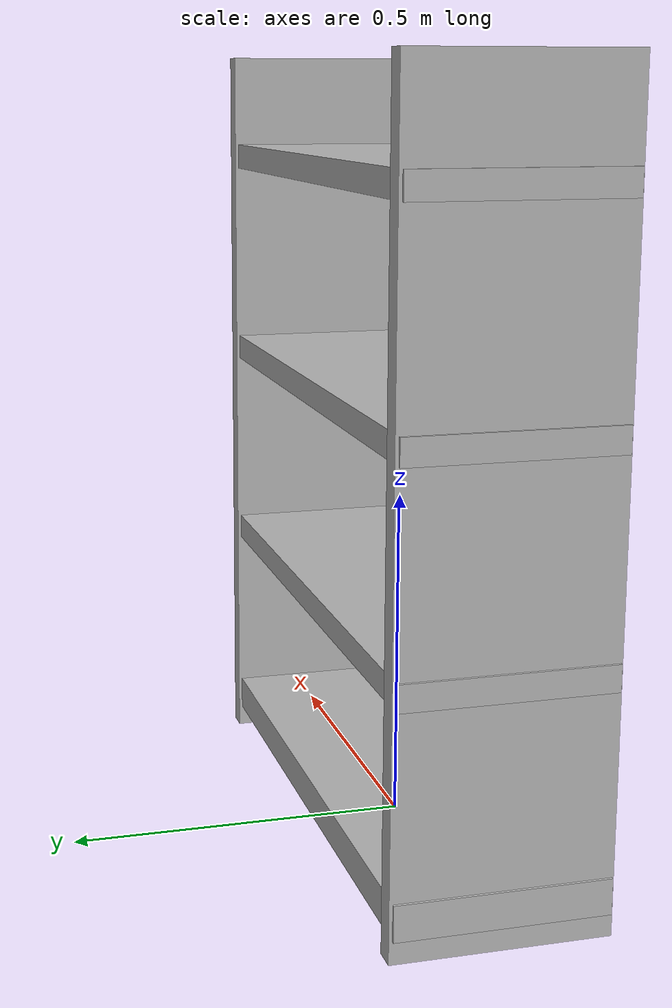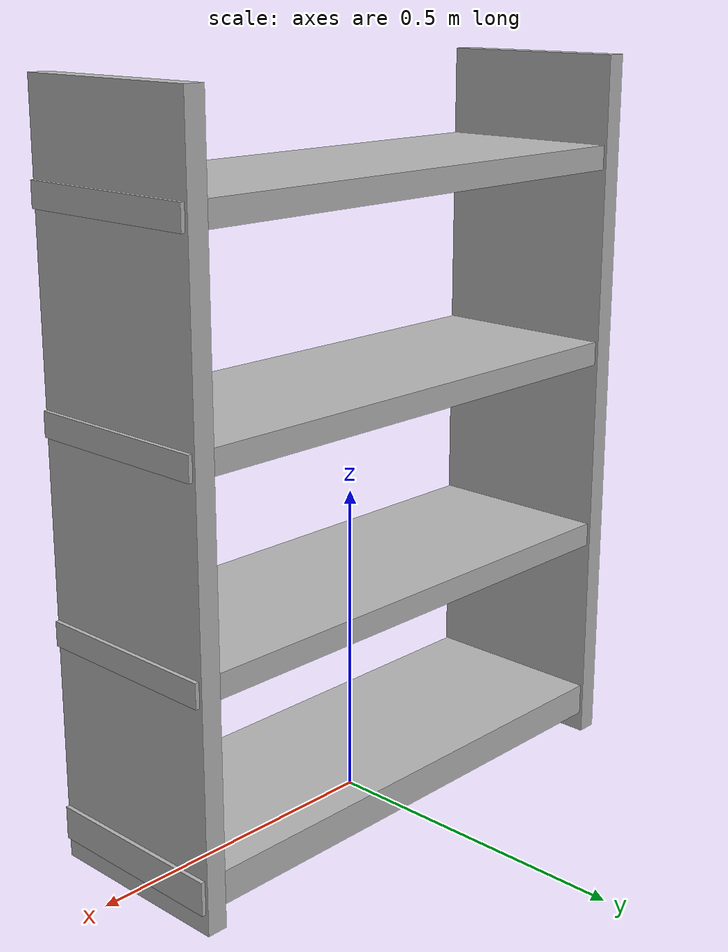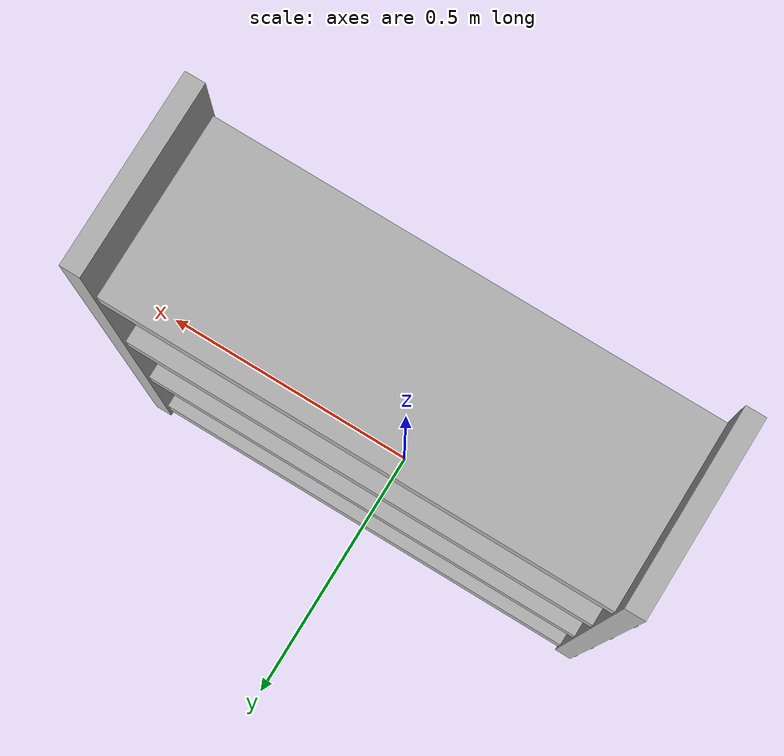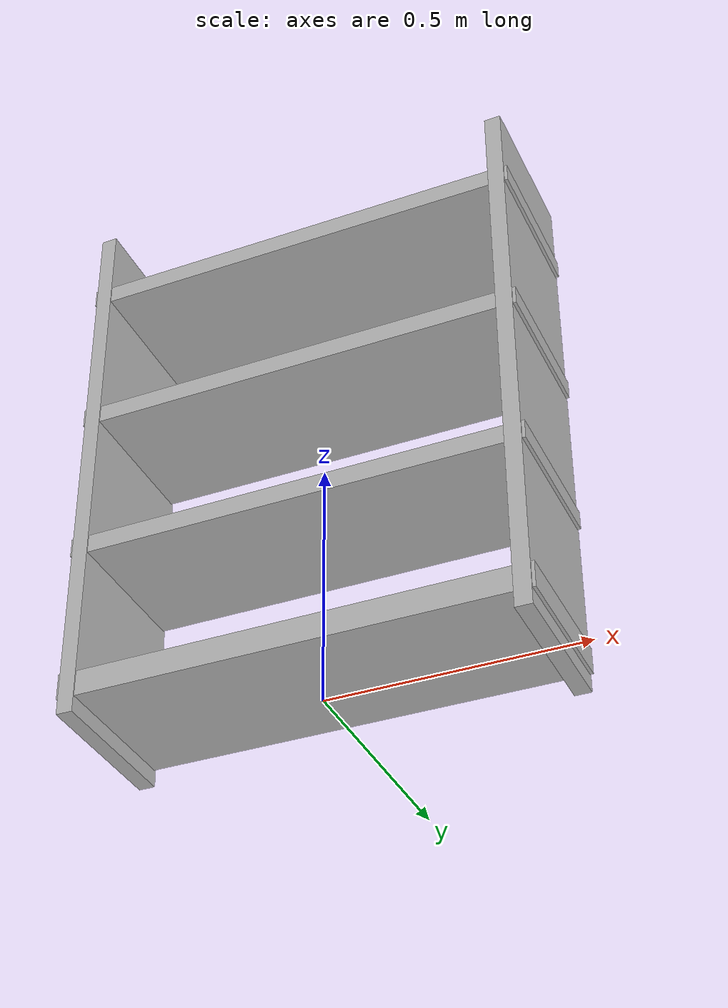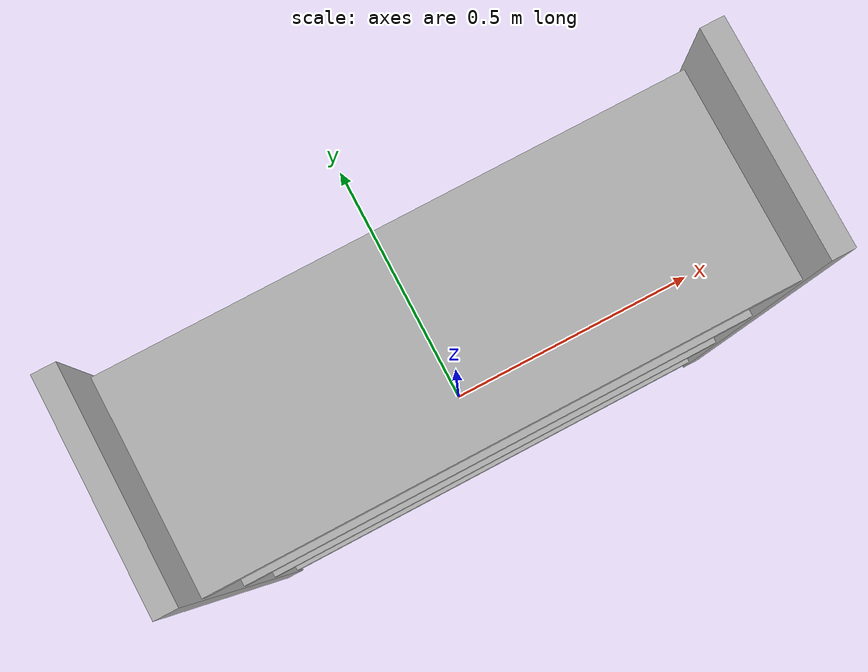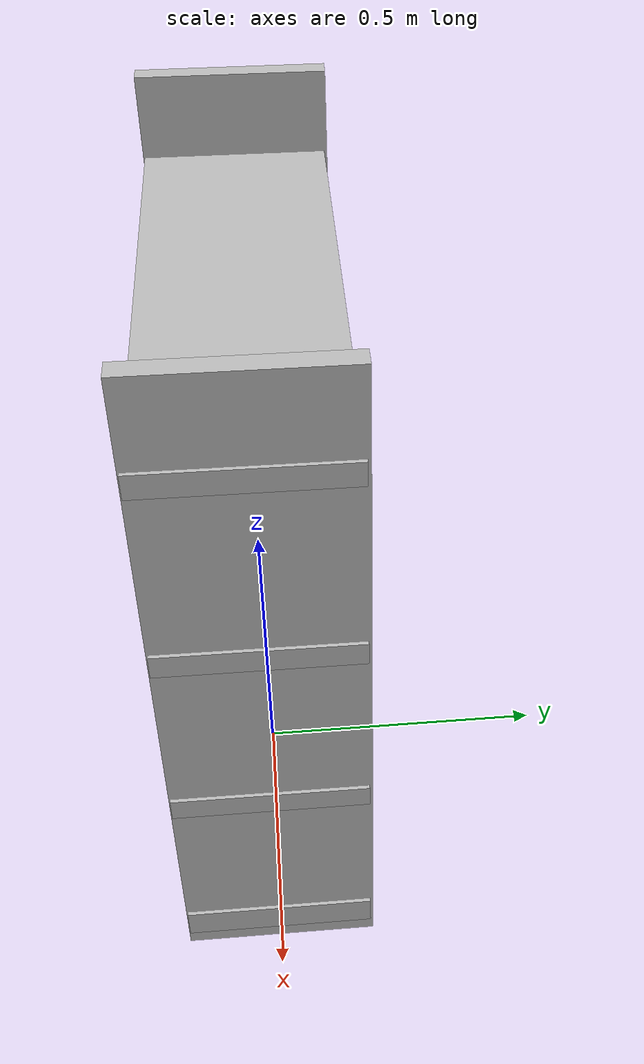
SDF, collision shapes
<?xml version="1.0" ?>
<sdf version="1.6">
  <model name="aws_robomaker_residential_ShoeRack_01">
    <link name="link">

      <inertial>
        <mass>6</mass>
          <inertia>
            <ixx>0.02</ixx>
            <ixy>0</ixy>
            <ixz>0</ixz>
            <iyy>0.04</iyy>
            <iyz>0</iyz>
            <ixx>0.02</ixx>
          </inertia>
      </inertial>

      <collision name="aws_shoerack_01_collision_collider_box">
        <pose>0.427684 0.001028 0.5693 1.570796 -0.0 3.141593</pose>
        <geometry>
          <box>
            <size>0.0326 1.147528 0.310044</size>
          </box>
        </geometry>

        <surface>
          <friction>
            <ode>
              <mu>0.2</mu>
              <mu2>0.2</mu2>
            </ode>
          </friction>

          <contact>
            <ode>
              <kd>2500</kd>
            </ode>
          </contact>

        </surface>
      </collision>
      <collision name="aws_shoerack_01_collision_collider_box.001">
        <pose>-0.434439 0.001028 0.5693 1.570796 -0.0 3.141593</pose>
        <geometry>
          <box>
            <size>0.032041 1.147528 0.310044</size>
          </box>
        </geometry>

        <surface>
          <friction>
            <ode>
              <mu>0.2</mu>
              <mu2>0.2</mu2>
            </ode>
          </friction>

          <contact>
            <ode>
              <kd>2500</kd>
            </ode>
          </contact>

        </surface>
      </collision>
      <collision name="aws_shoerack_01_collision_collider_box.002">
        <pose>-0.002193 -0.000255 0.054054 1.570796 -0.0 3.141593</pose>
        <geometry>
          <box>
            <size>0.905175 0.05147 0.302693</size>
          </box>
        </geometry>

        <surface>
          <friction>
            <ode>
              <mu>0.2</mu>
              <mu2>0.2</mu2>
            </ode>
          </friction>

          <contact>
            <ode>
              <kd>2500</kd>
            </ode>
          </contact>

        </surface>
      </collision>
      <collision name="aws_shoerack_01_collision_collider_box.003">
        <pose>-0.002193 -0.000255 0.357489 1.570796 -0.0 3.141593</pose>
        <geometry>
          <box>
            <size>0.905175 0.038071 0.302693</size>
          </box>
        </geometry>

        <surface>
          <friction>
            <ode>
              <mu>0.2</mu>
              <mu2>0.2</mu2>
            </ode>
          </friction>

          <contact>
            <ode>
              <kd>2500</kd>
            </ode>
          </contact>

        </surface>
      </collision>
      <collision name="aws_shoerack_01_collision_collider_box.004">
        <pose>-0.002193 -0.000255 0.669599 1.570796 -0.0 3.141593</pose>
        <geometry>
          <box>
            <size>0.905175 0.038071 0.302693</size>
          </box>
        </geometry>

        <surface>
          <friction>
            <ode>
              <mu>0.2</mu>
              <mu2>0.2</mu2>
            </ode>
          </friction>

          <contact>
            <ode>
              <kd>2500</kd>
            </ode>
          </contact>

        </surface>
      </collision>
      <collision name="aws_shoerack_01_collision_collider_box.005">
        <pose>-0.002193 -0.000255 0.985681 1.570796 -0.0 3.141593</pose>
        <geometry>
          <box>
            <size>0.905175 0.038071 0.302693</size>
          </box>
        </geometry>

        <surface>
          <friction>
            <ode>
              <mu>0.2</mu>
              <mu2>0.2</mu2>
            </ode>
          </friction>

          <contact>
            <ode>
              <kd>2500</kd>
            </ode>
          </contact>

        </surface>
      </collision>

      <visual name="visual">
	    <geometry>
          <mesh>
            <uri>model://aws_robomaker_residential_ShoeRack_01/meshes/aws_ShoeRack_01_visual.DAE</uri>
          </mesh>
        </geometry>
      <meta> <layer> 1 </layer></meta>
</visual>

    </link>
  </model>
</sdf>
